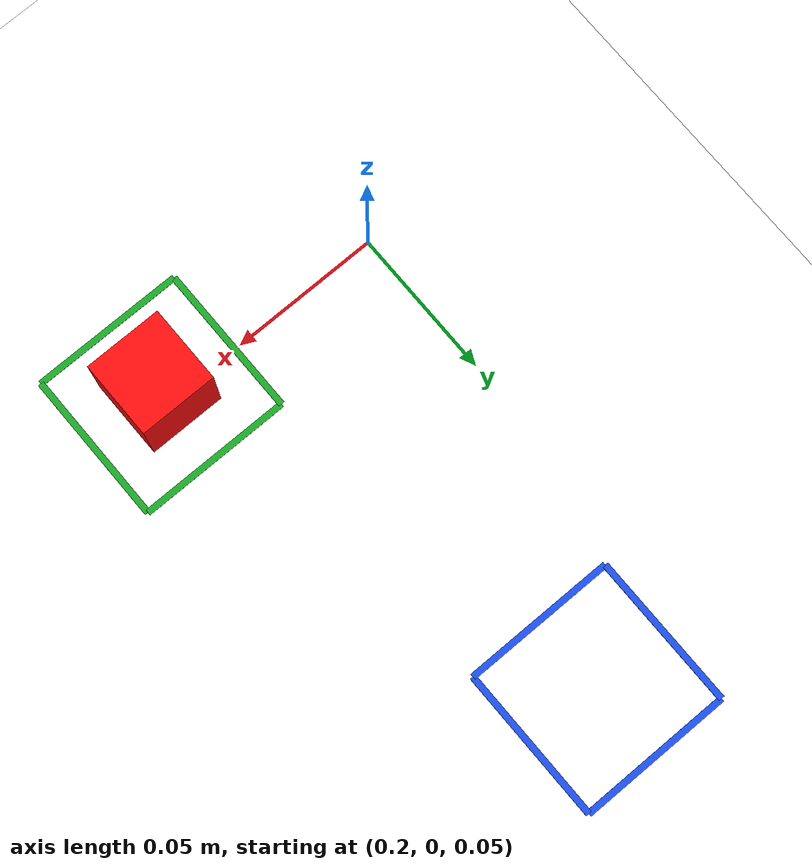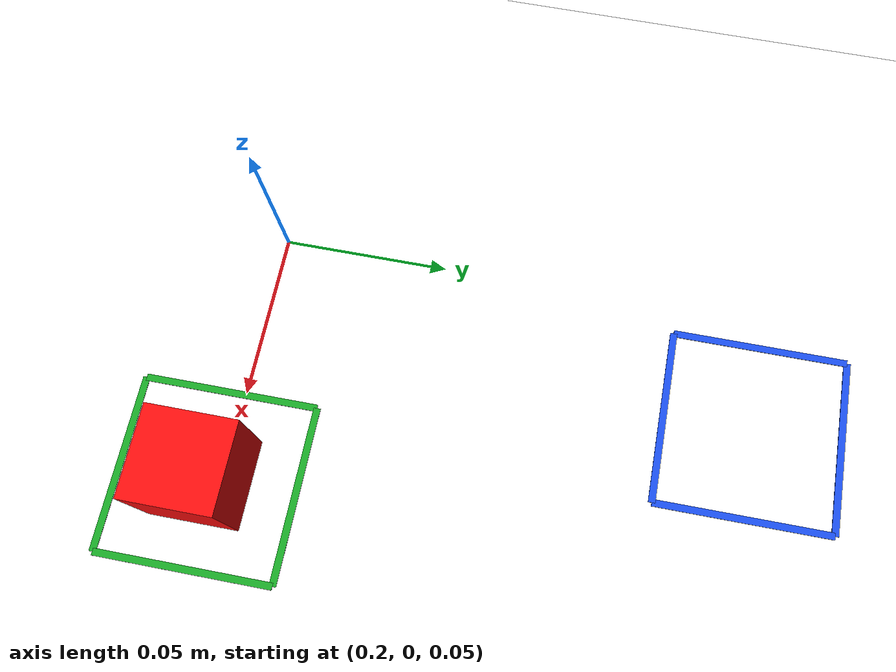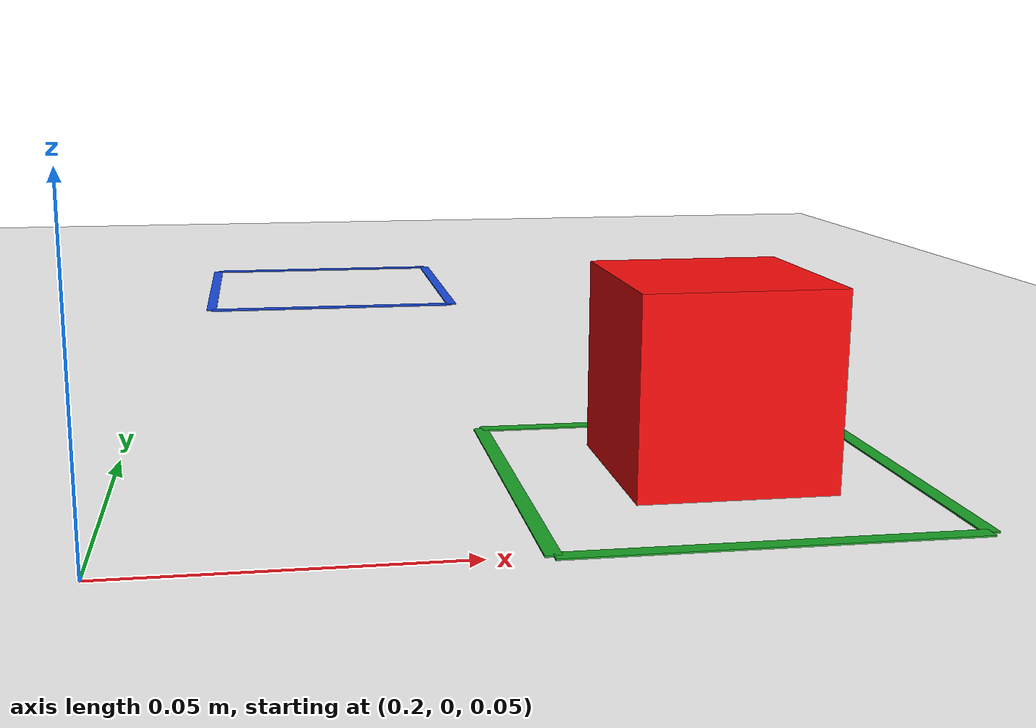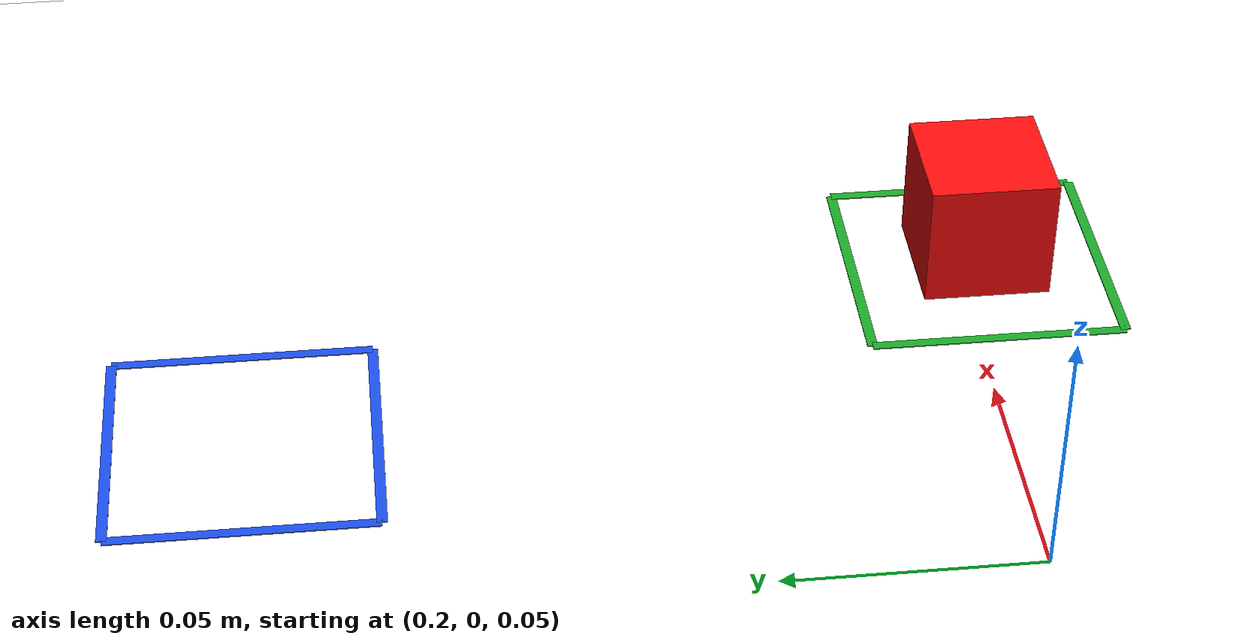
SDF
<sdf version="1.7">
  <world name="pick_place_world">
    <plugin filename="ignition-gazebo-physics-system" name="ignition::gazebo::systems::Physics" />
    <plugin filename="ignition-gazebo-scene-broadcaster-system" name="ignition::gazebo::systems::SceneBroadcaster" />
    <plugin filename="ignition-gazebo-user-commands-system" name="ignition::gazebo::systems::UserCommands" />
    <scene>
      <ambient>0.96 0.96 0.96 1</ambient>
      <background>1 1 1 1</background>
      <shadows>false</shadows>
    </scene>
    <light name="sun" type="directional">
      <pose>0 0 3 0 0 0</pose>
      <diffuse>1 1 1 1</diffuse>
      <specular>0.2 0.2 0.2 1</specular>
      <direction>-0.45 0.2 -0.9</direction>
    </light>
    <model name="table">
      <static>true</static>
      <link name="link">
        <collision name="collision">
          <geometry>
            <box>
              <size>1.6 1.2 .05</size>
            </box>
          </geometry>
        </collision>
        <visual name="visual">
          <geometry>
            <box>
              <size>1.6 1.2 .05</size>
            </box>
          </geometry>
          <material>
            <ambient>0.98 0.98 0.98 1</ambient>
            <diffuse>0.98 0.98 0.98 1</diffuse>
            <specular>0.05 0.05 0.05 1</specular>
          </material>
        </visual>
      </link>
      <pose>0 0 .035 0 0 0</pose>
    </model>
    <model name="pick_box">
      <pose>.278 -.001 .0735 0 0 0</pose>
      <link name="box_link">
        <inertial>
          <mass>0.05</mass>
          <inertia>
            <ixx>5.208333333333335e-06</ixx>
            <iyy>5.208333333333335e-06</iyy>
            <izz>5.208333333333335e-06</izz>
            <ixy>0</ixy>
            <ixz>0</ixz>
            <iyz>0</iyz>
          </inertia>
        </inertial>
        <collision name="collision">
          <geometry>
            <box>
              <size>.025 .025 .025</size>
            </box>
          </geometry>
        </collision>
        <visual name="visual">
          <geometry>
            <box>
              <size>.025 .025 .025</size>
            </box>
          </geometry>
          <material>
            <ambient>1 0.05 0.05 1</ambient>
            <diffuse>1 0.05 0.05 1</diffuse>
          </material>
        </visual>
        <sensor name="box_contacts" type="contact">
          <always_on>true</always_on>
          <update_rate>50</update_rate>
          <topic>/ep/box_contacts</topic>
          <contact>
            <collision>collision</collision>
          </contact>
        </sensor>
      </link>
    </model>
    <plugin filename="ignition-gazebo-contact-system" name="ignition::gazebo::systems::Contact" />
    <model name="mark_A">
      <static>true</static>
      <pose>0.278 -0.001 .0602 0 0 0</pose>
      <link name="link">
        <visual name="edge_0">
          <pose>-0.025 0 0 0 0 0</pose>
          <geometry>
            <box>
              <size>0.002 0.05 .0002</size>
            </box>
          </geometry>
          <material>
            <ambient>0.1 0.65 0.15 1</ambient>
            <diffuse>0.1 0.65 0.15 1</diffuse>
          </material>
        </visual>
        <visual name="edge_1">
          <pose>0.025 0 0 0 0 0</pose>
          <geometry>
            <box>
              <size>0.002 0.05 .0002</size>
            </box>
          </geometry>
          <material>
            <ambient>0.1 0.65 0.15 1</ambient>
            <diffuse>0.1 0.65 0.15 1</diffuse>
          </material>
        </visual>
        <visual name="edge_2">
          <pose>0 -0.025 0 0 0 0</pose>
          <geometry>
            <box>
              <size>0.05 0.002 .0002</size>
            </box>
          </geometry>
          <material>
            <ambient>0.1 0.65 0.15 1</ambient>
            <diffuse>0.1 0.65 0.15 1</diffuse>
          </material>
        </visual>
        <visual name="edge_3">
          <pose>0 0.025 0 0 0 0</pose>
          <geometry>
            <box>
              <size>0.05 0.002 .0002</size>
            </box>
          </geometry>
          <material>
            <ambient>0.1 0.65 0.15 1</ambient>
            <diffuse>0.1 0.65 0.15 1</diffuse>
          </material>
        </visual>
      </link>
    </model>
    <model name="mark_B">
      <static>true</static>
      <pose>0.237 0.1453 .0602 0 0 0</pose>
      <link name="link">
        <visual name="edge_0">
          <pose>-0.025 0 0 0 0 0</pose>
          <geometry>
            <box>
              <size>0.002 0.05 .0002</size>
            </box>
          </geometry>
          <material>
            <ambient>0.1 0.3 0.9 1</ambient>
            <diffuse>0.1 0.3 0.9 1</diffuse>
          </material>
        </visual>
        <visual name="edge_1">
          <pose>0.025 0 0 0 0 0</pose>
          <geometry>
            <box>
              <size>0.002 0.05 .0002</size>
            </box>
          </geometry>
          <material>
            <ambient>0.1 0.3 0.9 1</ambient>
            <diffuse>0.1 0.3 0.9 1</diffuse>
          </material>
        </visual>
        <visual name="edge_2">
          <pose>0 -0.025 0 0 0 0</pose>
          <geometry>
            <box>
              <size>0.05 0.002 .0002</size>
            </box>
          </geometry>
          <material>
            <ambient>0.1 0.3 0.9 1</ambient>
            <diffuse>0.1 0.3 0.9 1</diffuse>
          </material>
        </visual>
        <visual name="edge_3">
          <pose>0 0.025 0 0 0 0</pose>
          <geometry>
            <box>
              <size>0.05 0.002 .0002</size>
            </box>
          </geometry>
          <material>
            <ambient>0.1 0.3 0.9 1</ambient>
            <diffuse>0.1 0.3 0.9 1</diffuse>
          </material>
        </visual>
      </link>
    </model>
  </world>
</sdf>
